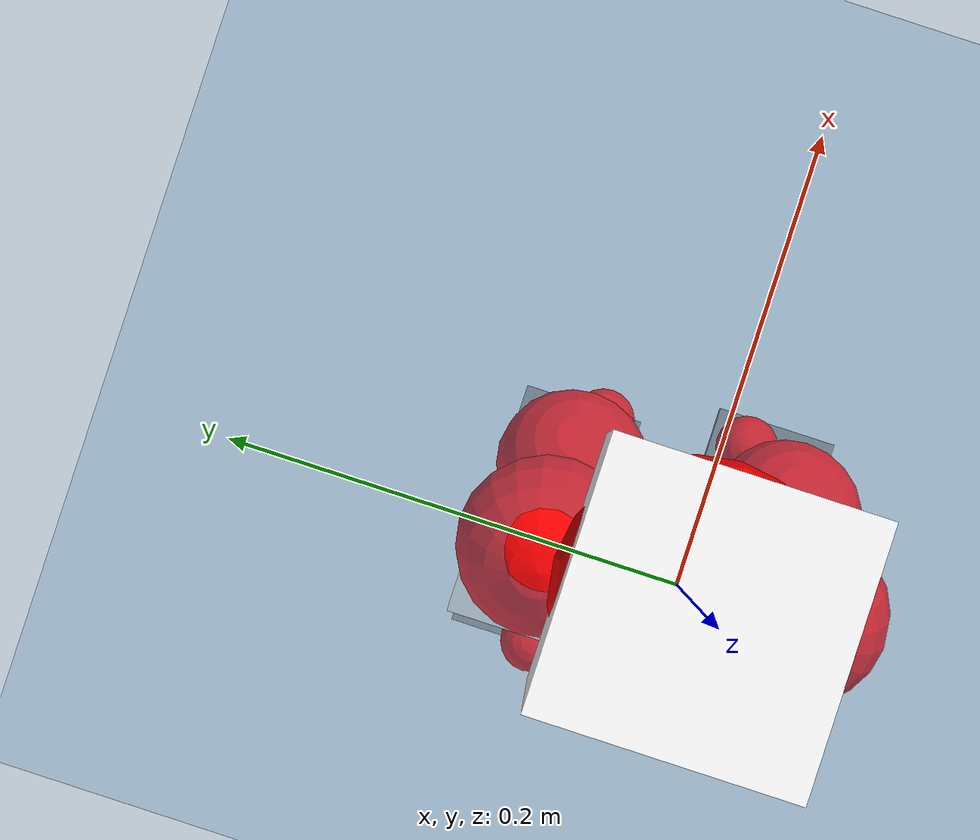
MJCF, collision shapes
<mujoco model="pi_12dof_release_v1">
  <compiler angle="radian" assetdir="assets" balanceinertia="true" inertiafromgeom="false"/>

  <option timestep="0.005" density="1.2" viscosity="2e-05"/>

  <size nkey="1"/>

  <visual>
    <quality shadowsize="8192"/>
    <map shadowclip="0.5"/>
  </visual>

  <default>
    <default class="/">
      <joint armature="0.01" damping="0.01" frictionloss="0.01"/>
      <geom contype="0" conaffinity="0" group="1" solref="-1000 -80"/>
      <site size="0.01 0.005 0.005" group="5"/>
      <general forcelimited="true" biastype="affine" gainprm="20" biasprm="0 -20 -0.5"/>
      <default class="foot">
        <geom size="0.0845 0.036 0.005" type="box" condim="6" group="4" priority="1" friction="0.9 0.2 0.2" solimp="0.015 1 0.005"/>
      </default>
      <default class="reward_collision_sphere">
        <geom group="5" rgba="1 0 0 1"/>
      </default>
    </default>
  </default>

  <asset>
    <texture type="skybox" colorspace="auto" name="//unnamed_texture_0" builtin="gradient" rgb1="0.95 0.95 0.95" rgb2="0.95 0.95 0.95" width="100" height="600"/>
    <texture type="2d" colorspace="auto" name="texplane" builtin="checker" rgb1="0.345 0.575 0.748" rgb2="0.345 0.575 0.748" markrgb="1 1 1" width="512" height="512"/>
    <material name="MatPlane" class="/" texture="texplane" texuniform="true" texrepeat="2 2" specular="0.9"/>
    <mesh name="baselink_1" class="/" file="baselink_1.STL"/>
    <mesh name="r_hip_pitch_link" class="/" file="r_hip_pitch_link.STL"/>
    <mesh name="r_hip_roll_link" class="/" file="r_hip_roll_link.STL"/>
    <mesh name="r_thigh_link" class="/" file="r_thigh_link.STL"/>
    <mesh name="r_calf_link" class="/" file="r_calf_link.STL"/>
    <mesh name="r_ankle_pitch_link" class="/" file="r_ankle_pitch_link.STL"/>
    <mesh name="r_ankle_roll_link" class="/" file="r_ankle_roll_link.STL"/>
    <mesh name="l_hip_pitch_link" class="/" file="l_hip_pitch_link.STL"/>
    <mesh name="l_hip_roll_link" class="/" file="l_hip_roll_link.STL"/>
    <mesh name="l_thigh_link" class="/" file="l_thigh_link.STL"/>
    <mesh name="l_calf_link" class="/" file="l_calf_link.STL"/>
    <mesh name="l_ankle_pitch_link" class="/" file="l_ankle_pitch_link.STL"/>
    <mesh name="l_ankle_roll_link" class="/" file="l_ankle_roll_link.STL"/>
  </asset>

  <worldbody>
    <geom name="floor" class="/" size="100 100 0.125" type="plane" group="0" material="MatPlane"/>
    <light name="toplight_shadow" class="/" pos="0 0 5" dir="0.0990148 0.0990148 -0.990148" type="directional" ambient="0.04 0.04 0.04" diffuse="0.55 0.55 0.55" specular="0.12 0.12 0.12"/>
    <light name="toplight_fill" class="/" pos="0 0 5" dir="0.0990148 0.0990148 -0.990148" type="directional" castshadow="false" ambient="0.04 0.04 0.04" diffuse="0.3 0.3 0.3" specular="0.08 0.08 0.08"/>
    <body name="trunk" pos="-0.000452689 -0.00211258 0.000499213" quat="0.999999 -0.000846987 -0.000637504 0.000134893">
      <inertial pos="0.0011999 -0.00294829 0.0510268" quat="0.690623 0.00815185 0.0117562 0.723074" mass="2.30165" diaginertia="0.0158352 0.00205374 0.0104768"/>
      <joint name="//unnamed_joint_0" type="free"/>
      <geom name="//unnamed_geom_1" class="/" type="mesh" density="0" rgba="1 1 1 1" mesh="baselink_1"/>
      <geom name="//unnamed_geom_2" class="/" size="0.0511414 0.0511414 0.0511414" pos="0 0 0.096264" type="box" rgba="1 1 1 1"/>
      <geom name="//unnamed_geom_3" class="reward_collision_sphere" size="0.0562556" pos="0 0 0.084231"/>
      <site name="imu" class="/" pos="0.00253729 0.000830931 0.000871986" size="0.0102283"/>
      <camera name="track" class="/" pos="0 -1.49843 0" quat="0.707107 0.707107 0 0" mode="trackcom"/>
      <camera name="ego_camera" class="/" pos="0.0836977 0 0.216594" quat="-0.5 -0.5 0.5 0.5"/>
      <body name="r_hip_pitch_link" pos="0.000589716 -0.0165171 -0.039775" quat="0.992217 0.000147025 -0.124521 8.59509e-05">
        <inertial pos="0.000807307 -0.0448995 -0.000425728" quat="-0.0119608 0.712389 -0.0284711 0.701105" mass="0.393396" diaginertia="0.000185321 2.26247e-05 0.000205937"/>
        <joint name="r_hip_pitch_joint" class="/" pos="0 0 0" axis="0.00511593 -0.999986 -0.00117046" range="-1.70966 1.27726" armature="0.0102696" damping="0.0264946" frictionloss="0.0116228"/>
        <geom name="//unnamed_geom_4" class="/" type="mesh" density="0" rgba="0.75294 0.75294 0.75294 1" mesh="r_hip_pitch_link"/>
        <geom name="//unnamed_geom_5" class="/" size="0.000511414 0.000511414 0.000511414" type="box" rgba="0.75294 0.75294 0.75294 1"/>
        <body name="r_hip_roll_link" pos="0.00299023 -0.0396433 0.000366715" quat="0.999999 -0.00102421 -0.000257407 0.000727174">
          <inertial pos="-0.00305522 0.00158025 -0.0723451" quat="0.706736 -0.0790303 -0.082869 0.698148" mass="0.423093" diaginertia="0.000559659 6.79545e-05 0.000325026"/>
          <joint name="r_hip_roll_joint" class="/" pos="0 0 0" axis="-0.999984 0.00242515 0.0050637" stiffness="0.00122997" range="-0.126015 0.484374" armature="0.0116538" damping="0.0237408" frictionloss="0.0104688"/>
          <geom name="//unnamed_geom_6" class="/" type="mesh" density="0" rgba="0.75294 0.75294 0.75294 1" mesh="r_hip_roll_link"/>
          <geom name="//unnamed_geom_7" class="/" size="0.000511414 0.000511414 0.000511414" type="box" rgba="0.75294 0.75294 0.75294 1"/>
          <geom name="//unnamed_geom_8" class="reward_collision_sphere" size="0.0409131"/>
          <body name="r_thigh_link" pos="0.00107173 0.00192403 -0.0836418" quat="1 -0.000555821 -4.02251e-05 0.000219509">
            <inertial pos="-0.00223494 -0.00106447 -0.0598663" quat="0.737424 0.67543 5.66747e-05 0.000481651" mass="0.117377" diaginertia="0.000211618 2.25598e-05 0.000143542"/>
            <joint name="r_thigh_joint" class="/" pos="0 0 0" axis="0.0113844 -0.000392375 -0.999935" range="-0.354099 0.541556" armature="0.011702" damping="0" frictionloss="0.0115919"/>
            <geom name="//unnamed_geom_9" class="/" type="mesh" density="0" rgba="0.75294 0.75294 0.75294 1" mesh="r_thigh_link"/>
            <geom name="//unnamed_geom_10" class="/" size="0.000511414 0.000511414 0.000511414" type="box" rgba="0.75294 0.75294 0.75294 1"/>
            <body name="r_calf_link" pos="-0.00200889 -0.00365704 -0.0857863" quat="0.947531 -0.000163144 0.319664 -0.000212174">
              <inertial pos="0.00101288 -0.000416694 -0.0843319" quat="0.999933 0.00428246 0.0107519 -2.79929e-05" mass="0.875579" diaginertia="0.00595787 0.000825909 0.000442196"/>
              <joint name="r_calf_joint" class="/" pos="0 0 0" axis="-0.00491175 -0.999915 0.0120792" range="-1.67504 0.669491" armature="0.0104601" damping="0.00410179" frictionloss="0.0116365"/>
              <geom name="//unnamed_geom_11" class="/" type="mesh" density="0" rgba="0.75294 0.75294 0.75294 1" mesh="r_calf_link"/>
              <geom name="//unnamed_geom_12" class="/" size="0.000511414 0.000511414 0.000511414" type="box" rgba="0.75294 0.75294 0.75294 1"/>
              <geom name="//unnamed_geom_13" class="reward_collision_sphere" size="0.0409131"/>
              <body name="r_ankle_pitch_link" pos="-4.85318e-05 -0.00196985 -0.170807" quat="0.980063 1.39977e-05 -0.198687 -2.88626e-05">
                <inertial pos="0.00635112 0.000849461 0.00242179" quat="0.00250453 0.707509 -0.00229503 0.706696" mass="0.187124" diaginertia="0.000519508 5.25306e-05 0.000303226"/>
                <joint name="r_ankle_pitch_joint" class="/" pos="0 0 0" axis="-0.00566914 -0.99998 0.00285743" range="-1.34042 0.44648" armature="0.0114968" damping="0.00936565" frictionloss="0.0116408"/>
                <geom name="//unnamed_geom_14" class="/" type="mesh" density="0" rgba="0.75294 0.75294 0.75294 1" mesh="r_ankle_pitch_link"/>
                <geom name="//unnamed_geom_15" class="/" size="0.0398903 0.0409131 0.0255707" type="box" rgba="0.75294 0.75294 0.75294 1"/>
                <body name="r_ankle_roll_link" pos="0.0862306 -0.000854372 0.0027249" quat="1 -0.000292742 0.000343793 0.00010932">
                  <inertial pos="-0.0285598 0.00217924 -0.0176858" quat="0.560085 0.429128 0.435469 0.559036" mass="0.57269" diaginertia="0.00201712 0.000258383 0.000721115"/>
                  <joint name="r_ankle_roll_joint" class="/" pos="0 0 0" axis="-0.999945 0.0020794 -0.0102742" stiffness="0.00928319" range="-0.10072 0.204384" armature="0.0103832" damping="0.0194224" frictionloss="0.00999281"/>
                  <geom name="//unnamed_geom_16" class="/" type="mesh" density="0" rgba="0.75294 0.75294 0.75294 1" mesh="r_ankle_roll_link"/>
                  <geom name="//unnamed_geom_17" class="/" type="mesh" rgba="0.75294 0.75294 0.75294 1" mesh="r_ankle_roll_link"/>
                  <geom name="right_foot" class="foot" size="0.0925549 0.0390012 0.00493392" pos="-0.0569144 0 -0.0529452"/>
                  <geom name="//unnamed_geom_19" class="reward_collision_sphere" size="0.0409131" pos="-0.0557985 0 -0.024066"/>
                  <geom name="//unnamed_geom_20" class="reward_collision_sphere" size="0.0204566" pos="0.0167395 0.0149843 -0.048132"/>
                  <geom name="//unnamed_geom_21" class="reward_collision_sphere" size="0.0204566" pos="-0.133916 0.0149843 -0.048132"/>
                  <site name="right_foot" class="foot" pos="-0.0569144 0 -0.0529452" size="0.0102283"/>
                </body>
              </body>
            </body>
          </body>
        </body>
      </body>
      <body name="l_hip_pitch_link" pos="-0.000958133 0.0186585 -0.036733" quat="0.992226 3.58967e-05 -0.124445 -7.68498e-05">
        <inertial pos="-0.000226829 0.0413118 0.00175104" quat="-0.0383154 0.702742 0.03244 0.709671" mass="0.403379" diaginertia="0.000224677 2.44471e-05 0.000258383"/>
        <joint name="l_hip_pitch_joint" class="/" pos="0 0 0" axis="-0.00113393 0.999998 0.00185601" stiffness="0.0101947" range="-1.26705 1.80841" armature="0.00996649" damping="0.0118793" frictionloss="0.010151"/>
        <geom name="//unnamed_geom_22" class="/" type="mesh" density="0" rgba="0.75294 0.75294 0.75294 1" mesh="l_hip_pitch_link"/>
        <geom name="//unnamed_geom_23" class="/" size="0.000511414 0.000511414 0.000511414" type="box" rgba="0.75294 0.75294 0.75294 1"/>
        <body name="l_hip_roll_link" pos="-0.0020115 0.0408679 -0.000221804" quat="0.999999 8.29297e-05 0.00125794 -0.00042848">
          <inertial pos="-0.00395492 0.002323 -0.0736199" quat="0.705817 -0.0674445 -0.0726922 0.70142" mass="0.401015" diaginertia="0.000565195 6.65902e-05 0.000334441"/>
          <joint name="l_hip_roll_joint" class="/" pos="0 0 0" axis="-0.999959 -0.00899297 -0.00120411" range="-0.510408 0.111957" armature="0.0114929" damping="0.00880475" frictionloss="0.00948617"/>
          <geom name="//unnamed_geom_24" class="/" type="mesh" density="0" rgba="0.75294 0.75294 0.75294 1" mesh="l_hip_roll_link"/>
          <geom name="//unnamed_geom_25" class="/" size="0.000511414 0.000511414 0.000511414" type="box" rgba="0.75294 0.75294 0.75294 1"/>
          <geom name="//unnamed_geom_26" class="reward_collision_sphere" size="0.0409131"/>
          <body name="l_thigh_link" pos="-0.000388139 -0.000611016 -0.0811236" quat="1 0.000650508 -7.64959e-05 -4.10691e-05">
            <inertial pos="0.00102496 0.00127583 -0.0556185" quat="0.675361 0.737488 6.51435e-05 -7.91364e-05" mass="0.119842" diaginertia="0.000207263 2.13918e-05 0.000139584"/>
            <joint name="l_thigh_joint" class="/" pos="0 0 0" axis="-0.000800287 0.00118031 -0.999999" stiffness="0.00389178" range="-0.607879 0.284841" armature="0.00943605" damping="0" frictionloss="0.0100459"/>
            <geom name="//unnamed_geom_27" class="/" type="mesh" density="0" rgba="0.75294 0.75294 0.75294 1" mesh="l_thigh_link"/>
            <geom name="//unnamed_geom_28" class="/" size="0.000511414 0.000511414 0.000511414" type="box" rgba="0.75294 0.75294 0.75294 1"/>
            <body name="l_calf_link" pos="-0.00304262 -6.10147e-05 -0.0854339" quat="0.9476 0.00068831 0.319458 0.000938147">
              <inertial pos="-6.82271e-05 0.00256991 -0.0827961" quat="0.999988 0.00231336 -0.000871163 0.00410982" mass="0.857425" diaginertia="0.00600616 0.000809948 0.00044713"/>
              <joint name="l_calf_joint" class="/" pos="0 0 0" axis="-0.00335498 0.999978 -0.00564106" range="-0.595455 1.65761" armature="0.00987591" damping="0.00986136" frictionloss="0.00987192"/>
              <geom name="//unnamed_geom_29" class="/" type="mesh" density="0" rgba="0.75294 0.75294 0.75294 1" mesh="l_calf_link"/>
              <geom name="//unnamed_geom_30" class="/" size="0.000511414 0.000511414 0.000511414" type="box" rgba="0.75294 0.75294 0.75294 1"/>
              <geom name="//unnamed_geom_31" class="reward_collision_sphere" size="0.0409131"/>
              <body name="l_ankle_pitch_link" pos="-0.00205105 0.00346333 -0.16877" quat="0.980055 2.68635e-05 -0.198724 -2.04192e-05">
                <inertial pos="0.00533848 -0.00328951 0.0012177" quat="0.00228919 0.707353 0.00415524 0.706845" mass="0.184584" diaginertia="0.000530003 5.21196e-05 0.000290857"/>
                <joint name="l_ankle_pitch_joint" class="/" pos="0 0 0" axis="0.00135566 0.999999 -0.000599016" stiffness="0.0100525" range="-0.477391 1.29282" armature="0.00891407" damping="0.0228249" frictionloss="0.00928444"/>
                <geom name="//unnamed_geom_32" class="/" type="mesh" density="0" rgba="0.75294 0.75294 0.75294 1" mesh="l_ankle_pitch_link"/>
                <geom name="//unnamed_geom_33" class="/" size="0.0398903 0.0409131 0.0255707" type="box" rgba="0.75294 0.75294 0.75294 1"/>
                <body name="l_ankle_roll_link" pos="0.0854574 -0.000397761 0.000510736" quat="1 2.27571e-05 9.17768e-05 -3.14262e-06">
                  <inertial pos="-0.0291113 -0.000801874 -0.0183162" quat="0.559636 0.430755 0.434311 0.559135" mass="0.569406" diaginertia="0.00194155 0.00024629 0.000718363"/>
                  <joint name="l_ankle_roll_joint" class="/" pos="0 0 0" axis="-1 0.000105809 -0.000620338" stiffness="0.00109989" range="-0.10122 0.155461" armature="0.0107254" damping="0" frictionloss="0.0102461"/>
                  <geom name="//unnamed_geom_34" class="/" type="mesh" density="0" rgba="0.75294 0.75294 0.75294 1" mesh="l_ankle_roll_link"/>
                  <geom name="//unnamed_geom_35" class="/" type="mesh" rgba="0.75294 0.75294 0.75294 1" mesh="l_ankle_roll_link"/>
                  <geom name="left_foot" class="foot" size="0.0798831 0.0388856 0.00501401" pos="-0.0569144 0 -0.0529452"/>
                  <geom name="//unnamed_geom_37" class="reward_collision_sphere" size="0.0409131" pos="-0.0557985 0 -0.024066"/>
                  <geom name="//unnamed_geom_38" class="reward_collision_sphere" size="0.0204566" pos="0.0167395 -0.0149843 -0.048132"/>
                  <geom name="//unnamed_geom_39" class="reward_collision_sphere" size="0.0204566" pos="-0.133916 -0.0149843 -0.048132"/>
                  <site name="left_foot" class="foot" pos="-0.0569144 0 -0.0529452" size="0.0102283"/>
                </body>
              </body>
            </body>
          </body>
        </body>
      </body>
    </body>
  </worldbody>

  <contact>
    <pair class="/" geom1="floor" geom2="right_foot" name="//unnamed_contact_1"/>
    <pair class="/" geom1="floor" geom2="left_foot" name="//unnamed_contact_0"/>
  </contact>

  <actuator>
    <general name="r_hip_pitch_joint" class="/" joint="r_hip_pitch_joint" forcerange="-21.2462 21.2462" gainprm="20.0865" biasprm="0 -20.0865 -0.522497"/>
    <general name="r_hip_roll_joint" class="/" joint="r_hip_roll_joint" forcerange="-23.5339 23.5339" gainprm="20.0865" biasprm="0 -20.0865 -0.522497"/>
    <general name="r_thigh_joint" class="/" joint="r_thigh_joint" forcerange="-21.3655 21.3655" gainprm="20.0865" biasprm="0 -20.0865 -0.522497"/>
    <general name="r_calf_joint" class="/" joint="r_calf_joint" forcerange="-21.4501 21.4501" gainprm="20.0865" biasprm="0 -20.0865 -0.522497"/>
    <general name="r_ankle_pitch_joint" class="/" joint="r_ankle_pitch_joint" forcerange="-21.3154 21.3154" gainprm="20.0865" biasprm="0 -20.0865 -0.522497"/>
    <general name="r_ankle_roll_joint" class="/" joint="r_ankle_roll_joint" forcerange="-23.4723 23.4723" gainprm="20.0865" biasprm="0 -20.0865 -0.522497"/>
    <general name="l_hip_pitch_joint" class="/" joint="l_hip_pitch_joint" forcerange="-22.2125 22.2125" gainprm="20.0865" biasprm="0 -20.0865 -0.522497"/>
    <general name="l_hip_roll_joint" class="/" joint="l_hip_roll_joint" forcerange="-21.7285 21.7285" gainprm="20.0865" biasprm="0 -20.0865 -0.522497"/>
    <general name="l_thigh_joint" class="/" joint="l_thigh_joint" forcerange="-21.7819 21.7819" gainprm="20.0865" biasprm="0 -20.0865 -0.522497"/>
    <general name="l_calf_joint" class="/" joint="l_calf_joint" forcerange="-20.588 20.588" gainprm="20.0865" biasprm="0 -20.0865 -0.522497"/>
    <general name="l_ankle_pitch_joint" class="/" joint="l_ankle_pitch_joint" forcerange="-21.075 21.075" gainprm="20.0865" biasprm="0 -20.0865 -0.522497"/>
    <general name="l_ankle_roll_joint" class="/" joint="l_ankle_roll_joint" forcerange="-19.5016 19.5016" gainprm="20.0865" biasprm="0 -20.0865 -0.522497"/>
  </actuator>

  <sensor>
    <gyro site="imu" name="imu_angular_velocity"/>
    <velocimeter site="imu" name="imu_linear_velocity"/>
    <framelinvel objtype="site" objname="left_foot" name="left_foot_global_linear_velocity"/>
    <framelinvel objtype="site" objname="right_foot" name="right_foot_global_linear_velocity"/>
  </sensor>

  <keyframe>
    <key name="home" qpos="0 0 0.291 1 0 0 0 0.4 0 0 -0.8 0.4 0 -0.4 0 0 0.8 -0.4 0"/>
  </keyframe>
</mujoco>
